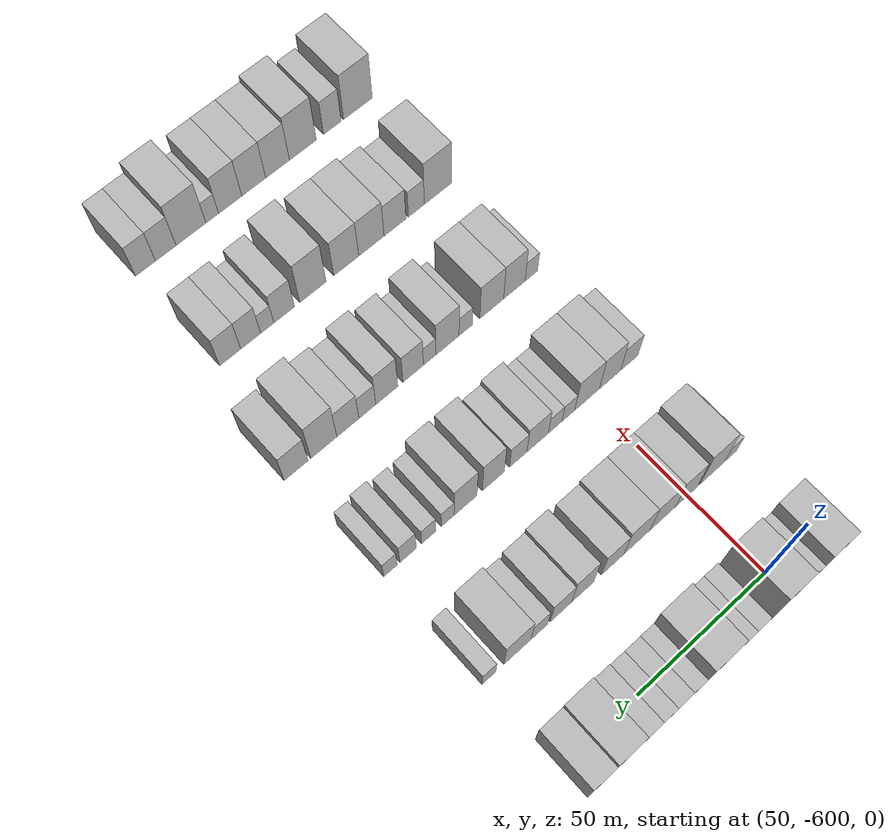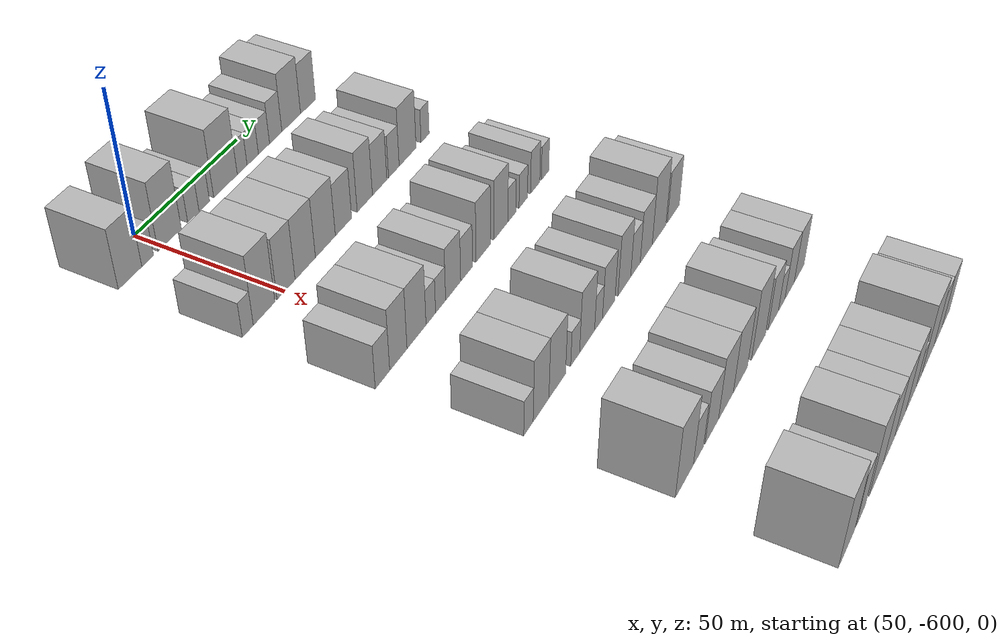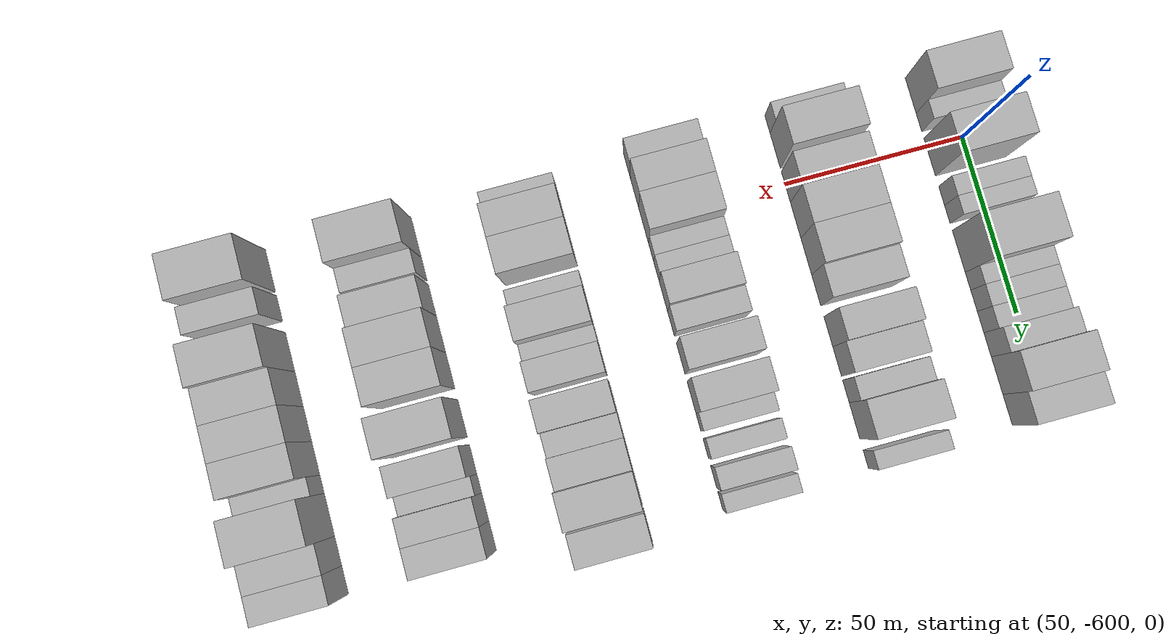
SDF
<sdf version="1.6">
 <world name="default">
  <model name="building_1">
   <static>1</static>
   <pose>50.0000 -614.8495 0 0.000000 0.000000 0.000000</pose>
   <link name="link">
    <pose>0 0 10.50 0 0 0</pose>
    <collision name="collision"><geometry><box><size>20.0000 10.3011 21.0000</size></box></geometry></collision>
    <visual name="visual">
     <cast_shadows>0</cast_shadows>
     <geometry><box><size>20.0000 10.3011 21.0000</size></box></geometry>
     <material>
      <script>
       <uri>model://HANNAS_wall/materials/scripts</uri>
       <uri>model://HANNAS_wall/materials/textures</uri>
       <name>vrc/HANNAS_wall</name>
      </script>
     </material>
    </visual>
   </link>
  </model>
  <model name="building_2">
   <static>1</static>
   <pose>50.0000 -607.0662 0 0.000000 0.000000 0.000000</pose>
   <link name="link">
    <pose>0 0 6.00 0 0 0</pose>
    <collision name="collision"><geometry><box><size>20.0000 5.2654 12.0000</size></box></geometry></collision>
    <visual name="visual">
     <cast_shadows>0</cast_shadows>
     <geometry><box><size>20.0000 5.2654 12.0000</size></box></geometry>
     <material>
      <script>
       <uri>model://HANNAS_wall/materials/scripts</uri>
       <uri>model://HANNAS_wall/materials/textures</uri>
       <name>vrc/HANNAS_wall</name>
      </script>
     </material>
    </visual>
   </link>
  </model>
  <model name="building_3">
   <static>1</static>
   <pose>50.0000 -597.0475 0 0.000000 0.000000 0.000000</pose>
   <link name="link">
    <pose>0 0 12.00 0 0 0</pose>
    <collision name="collision"><geometry><box><size>20.0000 10.7720 24.0000</size></box></geometry></collision>
    <visual name="visual">
     <cast_shadows>0</cast_shadows>
     <geometry><box><size>20.0000 10.7720 24.0000</size></box></geometry>
     <material>
      <script>
       <uri>model://HANNAS_wall/materials/scripts</uri>
       <uri>model://HANNAS_wall/materials/textures</uri>
       <name>vrc/HANNAS_wall</name>
      </script>
     </material>
    </visual>
   </link>
  </model>
  <model name="building_4">
   <static>1</static>
   <pose>50.0000 -585.9418 0 0.000000 0.000000 0.000000</pose>
   <link name="link">
    <pose>0 0 6.00 0 0 0</pose>
    <collision name="collision"><geometry><box><size>20.0000 5.4393 12.0000</size></box></geometry></collision>
    <visual name="visual">
     <cast_shadows>0</cast_shadows>
     <geometry><box><size>20.0000 5.4393 12.0000</size></box></geometry>
     <material>
      <script>
       <uri>model://HANNAS_wall/materials/scripts</uri>
       <uri>model://HANNAS_wall/materials/textures</uri>
       <name>vrc/HANNAS_wall</name>
      </script>
     </material>
    </visual>
   </link>
  </model>
  <model name="building_5">
   <static>1</static>
   <pose>50.0000 -580.6580 0 0.000000 0.000000 0.000000</pose>
   <link name="link">
    <pose>0 0 6.00 0 0 0</pose>
    <collision name="collision"><geometry><box><size>20.0000 5.1283 12.0000</size></box></geometry></collision>
    <visual name="visual">
     <cast_shadows>0</cast_shadows>
     <geometry><box><size>20.0000 5.1283 12.0000</size></box></geometry>
     <material>
      <script>
       <uri>model://HANNAS_wall/materials/scripts</uri>
       <uri>model://HANNAS_wall/materials/textures</uri>
       <name>vrc/HANNAS_wall</name>
      </script>
     </material>
    </visual>
   </link>
  </model>
  <model name="building_6">
   <static>1</static>
   <pose>50.0000 -570.1787 0 0.000000 0.000000 0.000000</pose>
   <link name="link">
    <pose>0 0 12.00 0 0 0</pose>
    <collision name="collision"><geometry><box><size>20.0000 11.8302 24.0000</size></box></geometry></collision>
    <visual name="visual">
     <cast_shadows>0</cast_shadows>
     <geometry><box><size>20.0000 11.8302 24.0000</size></box></geometry>
     <material>
      <script>
       <uri>model://HANNAS_wall/materials/scripts</uri>
       <uri>model://HANNAS_wall/materials/textures</uri>
       <name>vrc/HANNAS_wall</name>
      </script>
     </material>
    </visual>
   </link>
  </model>
  <model name="building_7">
   <static>1</static>
   <pose>50.0000 -561.7412 0 0.000000 0.000000 0.000000</pose>
   <link name="link">
    <pose>0 0 6.00 0 0 0</pose>
    <collision name="collision"><geometry><box><size>20.0000 5.0449 12.0000</size></box></geometry></collision>
    <visual name="visual">
     <cast_shadows>0</cast_shadows>
     <geometry><box><size>20.0000 5.0449 12.0000</size></box></geometry>
     <material>
      <script>
       <uri>model://HANNAS_wall/materials/scripts</uri>
       <uri>model://HANNAS_wall/materials/textures</uri>
       <name>vrc/HANNAS_wall</name>
      </script>
     </material>
    </visual>
   </link>
  </model>
  <model name="building_8">
   <static>1</static>
   <pose>50.0000 -556.2496 0 0.000000 0.000000 0.000000</pose>
   <link name="link">
    <pose>0 0 6.00 0 0 0</pose>
    <collision name="collision"><geometry><box><size>20.0000 5.9382 12.0000</size></box></geometry></collision>
    <visual name="visual">
     <cast_shadows>0</cast_shadows>
     <geometry><box><size>20.0000 5.9382 12.0000</size></box></geometry>
     <material>
      <script>
       <uri>model://HANNAS_wall/materials/scripts</uri>
       <uri>model://HANNAS_wall/materials/textures</uri>
       <name>vrc/HANNAS_wall</name>
      </script>
     </material>
    </visual>
   </link>
  </model>
  <model name="building_9">
   <static>1</static>
   <pose>50.0000 -550.3286 0 0.000000 0.000000 0.000000</pose>
   <link name="link">
    <pose>0 0 6.00 0 0 0</pose>
    <collision name="collision"><geometry><box><size>20.0000 5.9038 12.0000</size></box></geometry></collision>
    <visual name="visual">
     <cast_shadows>0</cast_shadows>
     <geometry><box><size>20.0000 5.9038 12.0000</size></box></geometry>
     <material>
      <script>
       <uri>model://HANNAS_wall/materials/scripts</uri>
       <uri>model://HANNAS_wall/materials/textures</uri>
       <name>vrc/HANNAS_wall</name>
      </script>
     </material>
    </visual>
   </link>
  </model>
  <model name="building_10">
   <static>1</static>
   <pose>50.0000 -544.0306 0 0.000000 0.000000 0.000000</pose>
   <link name="link">
    <pose>0 0 7.50 0 0 0</pose>
    <collision name="collision"><geometry><box><size>20.0000 6.6922 15.0000</size></box></geometry></collision>
    <visual name="visual">
     <cast_shadows>0</cast_shadows>
     <geometry><box><size>20.0000 6.6922 15.0000</size></box></geometry>
     <material>
      <script>
       <uri>model://HANNAS_wall/materials/scripts</uri>
       <uri>model://HANNAS_wall/materials/textures</uri>
       <name>vrc/HANNAS_wall</name>
      </script>
     </material>
    </visual>
   </link>
  </model>
  <model name="building_11">
   <static>1</static>
   <pose>50.0000 -535.5103 0 0.000000 0.000000 0.000000</pose>
   <link name="link">
    <pose>0 0 10.50 0 0 0</pose>
    <collision name="collision"><geometry><box><size>20.0000 10.3485 21.0000</size></box></geometry></collision>
    <visual name="visual">
     <cast_shadows>0</cast_shadows>
     <geometry><box><size>20.0000 10.3485 21.0000</size></box></geometry>
     <material>
      <script>
       <uri>model://HANNAS_wall/materials/scripts</uri>
       <uri>model://HANNAS_wall/materials/textures</uri>
       <name>vrc/HANNAS_wall</name>
      </script>
     </material>
    </visual>
   </link>
  </model>
  <model name="building_12">
   <static>1</static>
   <pose>50.0000 -526.0814 0 0.000000 0.000000 0.000000</pose>
   <link name="link">
    <pose>0 0 9.00 0 0 0</pose>
    <collision name="collision"><geometry><box><size>20.0000 8.5092 18.0000</size></box></geometry></collision>
    <visual name="visual">
     <cast_shadows>0</cast_shadows>
     <geometry><box><size>20.0000 8.5092 18.0000</size></box></geometry>
     <material>
      <script>
       <uri>model://HANNAS_wall/materials/scripts</uri>
       <uri>model://HANNAS_wall/materials/textures</uri>
       <name>vrc/HANNAS_wall</name>
      </script>
     </material>
    </visual>
   </link>
  </model>
  <model name="building_130">
   <static>1</static>
   <pose>90.0000 -617.4781 0 0.000000 0.000000 0.000000</pose>
   <link name="link">
    <pose>0 0 6.00 0 0 0</pose>
    <collision name="collision"><geometry><box><size>20.0000 5.0438 12.0000</size></box></geometry></collision>
    <visual name="visual">
     <cast_shadows>0</cast_shadows>
     <geometry><box><size>20.0000 5.0438 12.0000</size></box></geometry>
     <material>
      <script>
       <uri>model://HANNAS_wall/materials/scripts</uri>
       <uri>model://HANNAS_wall/materials/textures</uri>
       <name>vrc/HANNAS_wall</name>
      </script>
     </material>
    </visual>
   </link>
  </model>
  <model name="building_131">
   <static>1</static>
   <pose>90.0000 -609.8783 0 0.000000 0.000000 0.000000</pose>
   <link name="link">
    <pose>0 0 12.00 0 0 0</pose>
    <collision name="collision"><geometry><box><size>20.0000 10.1557 24.0000</size></box></geometry></collision>
    <visual name="visual">
     <cast_shadows>0</cast_shadows>
     <geometry><box><size>20.0000 10.1557 24.0000</size></box></geometry>
     <material>
      <script>
       <uri>model://HANNAS_wall/materials/scripts</uri>
       <uri>model://HANNAS_wall/materials/textures</uri>
       <name>vrc/HANNAS_wall</name>
      </script>
     </material>
    </visual>
   </link>
  </model>
  <model name="building_132">
   <static>1</static>
   <pose>90.0000 -599.4042 0 0.000000 0.000000 0.000000</pose>
   <link name="link">
    <pose>0 0 10.50 0 0 0</pose>
    <collision name="collision"><geometry><box><size>20.0000 8.7925 21.0000</size></box></geometry></collision>
    <visual name="visual">
     <cast_shadows>0</cast_shadows>
     <geometry><box><size>20.0000 8.7925 21.0000</size></box></geometry>
     <material>
      <script>
       <uri>model://HANNAS_wall/materials/scripts</uri>
       <uri>model://HANNAS_wall/materials/textures</uri>
       <name>vrc/HANNAS_wall</name>
      </script>
     </material>
    </visual>
   </link>
  </model>
  <model name="building_133">
   <static>1</static>
   <pose>90.0000 -589.9030 0 0.000000 0.000000 0.000000</pose>
   <link name="link">
    <pose>0 0 10.50 0 0 0</pose>
    <collision name="collision"><geometry><box><size>20.0000 10.2099 21.0000</size></box></geometry></collision>
    <visual name="visual">
     <cast_shadows>0</cast_shadows>
     <geometry><box><size>20.0000 10.2099 21.0000</size></box></geometry>
     <material>
      <script>
       <uri>model://HANNAS_wall/materials/scripts</uri>
       <uri>model://HANNAS_wall/materials/textures</uri>
       <name>vrc/HANNAS_wall</name>
      </script>
     </material>
    </visual>
   </link>
  </model>
  <model name="building_134">
   <static>1</static>
   <pose>90.0000 -579.6453 0 0.000000 0.000000 0.000000</pose>
   <link name="link">
    <pose>0 0 10.50 0 0 0</pose>
    <collision name="collision"><geometry><box><size>20.0000 10.3055 21.0000</size></box></geometry></collision>
    <visual name="visual">
     <cast_shadows>0</cast_shadows>
     <geometry><box><size>20.0000 10.3055 21.0000</size></box></geometry>
     <material>
      <script>
       <uri>model://HANNAS_wall/materials/scripts</uri>
       <uri>model://HANNAS_wall/materials/textures</uri>
       <name>vrc/HANNAS_wall</name>
      </script>
     </material>
    </visual>
   </link>
  </model>
  <model name="building_135">
   <static>1</static>
   <pose>90.0000 -570.1452 0 0.000000 0.000000 0.000000</pose>
   <link name="link">
    <pose>0 0 9.00 0 0 0</pose>
    <collision name="collision"><geometry><box><size>20.0000 8.6948 18.0000</size></box></geometry></collision>
    <visual name="visual">
     <cast_shadows>0</cast_shadows>
     <geometry><box><size>20.0000 8.6948 18.0000</size></box></geometry>
     <material>
      <script>
       <uri>model://HANNAS_wall/materials/scripts</uri>
       <uri>model://HANNAS_wall/materials/textures</uri>
       <name>vrc/HANNAS_wall</name>
      </script>
     </material>
    </visual>
   </link>
  </model>
  <model name="building_136">
   <static>1</static>
   <pose>90.0000 -558.5830 0 0.000000 0.000000 0.000000</pose>
   <link name="link">
    <pose>0 0 10.50 0 0 0</pose>
    <collision name="collision"><geometry><box><size>20.0000 8.4296 21.0000</size></box></geometry></collision>
    <visual name="visual">
     <cast_shadows>0</cast_shadows>
     <geometry><box><size>20.0000 8.4296 21.0000</size></box></geometry>
     <material>
      <script>
       <uri>model://HANNAS_wall/materials/scripts</uri>
       <uri>model://HANNAS_wall/materials/textures</uri>
       <name>vrc/HANNAS_wall</name>
      </script>
     </material>
    </visual>
   </link>
  </model>
  <model name="building_137">
   <static>1</static>
   <pose>90.0000 -550.2866 0 0.000000 0.000000 0.000000</pose>
   <link name="link">
    <pose>0 0 9.00 0 0 0</pose>
    <collision name="collision"><geometry><box><size>20.0000 8.1632 18.0000</size></box></geometry></collision>
    <visual name="visual">
     <cast_shadows>0</cast_shadows>
     <geometry><box><size>20.0000 8.1632 18.0000</size></box></geometry>
     <material>
      <script>
       <uri>model://HANNAS_wall/materials/scripts</uri>
       <uri>model://HANNAS_wall/materials/textures</uri>
       <name>vrc/HANNAS_wall</name>
      </script>
     </material>
    </visual>
   </link>
  </model>
  <model name="building_138">
   <static>1</static>
   <pose>90.0000 -542.1384 0 0.000000 0.000000 0.000000</pose>
   <link name="link">
    <pose>0 0 7.50 0 0 0</pose>
    <collision name="collision"><geometry><box><size>20.0000 6.1332 15.0000</size></box></geometry></collision>
    <visual name="visual">
     <cast_shadows>0</cast_shadows>
     <geometry><box><size>20.0000 6.1332 15.0000</size></box></geometry>
     <material>
      <script>
       <uri>model://HANNAS_wall/materials/scripts</uri>
       <uri>model://HANNAS_wall/materials/textures</uri>
       <name>vrc/HANNAS_wall</name>
      </script>
     </material>
    </visual>
   </link>
  </model>
  <model name="building_139">
   <static>1</static>
   <pose>90.0000 -534.0435 0 0.000000 0.000000 0.000000</pose>
   <link name="link">
    <pose>0 0 10.50 0 0 0</pose>
    <collision name="collision"><geometry><box><size>20.0000 10.0567 21.0000</size></box></geometry></collision>
    <visual name="visual">
     <cast_shadows>0</cast_shadows>
     <geometry><box><size>20.0000 10.0567 21.0000</size></box></geometry>
     <material>
      <script>
       <uri>model://HANNAS_wall/materials/scripts</uri>
       <uri>model://HANNAS_wall/materials/textures</uri>
       <name>vrc/HANNAS_wall</name>
      </script>
     </material>
    </visual>
   </link>
  </model>
  <model name="building_140">
   <static>1</static>
   <pose>90.0000 -523.5255 0 0.000000 0.000000 0.000000</pose>
   <link name="link">
    <pose>0 0 6.00 0 0 0</pose>
    <collision name="collision"><geometry><box><size>20.0000 4.9794 12.0000</size></box></geometry></collision>
    <visual name="visual">
     <cast_shadows>0</cast_shadows>
     <geometry><box><size>20.0000 4.9794 12.0000</size></box></geometry>
     <material>
      <script>
       <uri>model://HANNAS_wall/materials/scripts</uri>
       <uri>model://HANNAS_wall/materials/textures</uri>
       <name>vrc/HANNAS_wall</name>
      </script>
     </material>
    </visual>
   </link>
  </model>
  <model name="building_267">
   <static>1</static>
   <pose>130.0000 -616.4239 0 0.000000 0.000000 0.000000</pose>
   <link name="link">
    <pose>0 0 7.50 0 0 0</pose>
    <collision name="collision"><geometry><box><size>20.0000 7.1522 15.0000</size></box></geometry></collision>
    <visual name="visual">
     <cast_shadows>0</cast_shadows>
     <geometry><box><size>20.0000 7.1522 15.0000</size></box></geometry>
     <material>
      <script>
       <uri>model://HANNAS_wall/materials/scripts</uri>
       <uri>model://HANNAS_wall/materials/textures</uri>
       <name>vrc/HANNAS_wall</name>
      </script>
     </material>
    </visual>
   </link>
  </model>
  <model name="building_268">
   <static>1</static>
   <pose>130.0000 -608.4622 0 0.000000 0.000000 0.000000</pose>
   <link name="link">
    <pose>0 0 10.50 0 0 0</pose>
    <collision name="collision"><geometry><box><size>20.0000 8.7712 21.0000</size></box></geometry></collision>
    <visual name="visual">
     <cast_shadows>0</cast_shadows>
     <geometry><box><size>20.0000 8.7712 21.0000</size></box></geometry>
     <material>
      <script>
       <uri>model://HANNAS_wall/materials/scripts</uri>
       <uri>model://HANNAS_wall/materials/textures</uri>
       <name>vrc/HANNAS_wall</name>
      </script>
     </material>
    </visual>
   </link>
  </model>
  <model name="building_269">
   <static>1</static>
   <pose>130.0000 -599.0912 0 0.000000 0.000000 0.000000</pose>
   <link name="link">
    <pose>0 0 10.50 0 0 0</pose>
    <collision name="collision"><geometry><box><size>20.0000 9.9708 21.0000</size></box></geometry></collision>
    <visual name="visual">
     <cast_shadows>0</cast_shadows>
     <geometry><box><size>20.0000 9.9708 21.0000</size></box></geometry>
     <material>
      <script>
       <uri>model://HANNAS_wall/materials/scripts</uri>
       <uri>model://HANNAS_wall/materials/textures</uri>
       <name>vrc/HANNAS_wall</name>
      </script>
     </material>
    </visual>
   </link>
  </model>
  <model name="building_270">
   <static>1</static>
   <pose>130.0000 -591.5429 0 0.000000 0.000000 0.000000</pose>
   <link name="link">
    <pose>0 0 6.00 0 0 0</pose>
    <collision name="collision"><geometry><box><size>20.0000 5.1259 12.0000</size></box></geometry></collision>
    <visual name="visual">
     <cast_shadows>0</cast_shadows>
     <geometry><box><size>20.0000 5.1259 12.0000</size></box></geometry>
     <material>
      <script>
       <uri>model://HANNAS_wall/materials/scripts</uri>
       <uri>model://HANNAS_wall/materials/textures</uri>
       <name>vrc/HANNAS_wall</name>
      </script>
     </material>
    </visual>
   </link>
  </model>
  <model name="building_271">
   <static>1</static>
   <pose>130.0000 -586.2428 0 0.000000 0.000000 0.000000</pose>
   <link name="link">
    <pose>0 0 6.00 0 0 0</pose>
    <collision name="collision"><geometry><box><size>20.0000 5.4743 12.0000</size></box></geometry></collision>
    <visual name="visual">
     <cast_shadows>0</cast_shadows>
     <geometry><box><size>20.0000 5.4743 12.0000</size></box></geometry>
     <material>
      <script>
       <uri>model://HANNAS_wall/materials/scripts</uri>
       <uri>model://HANNAS_wall/materials/textures</uri>
       <name>vrc/HANNAS_wall</name>
      </script>
     </material>
    </visual>
   </link>
  </model>
  <model name="building_272">
   <static>1</static>
   <pose>130.0000 -579.2821 0 0.000000 0.000000 0.000000</pose>
   <link name="link">
    <pose>0 0 9.00 0 0 0</pose>
    <collision name="collision"><geometry><box><size>20.0000 8.4471 18.0000</size></box></geometry></collision>
    <visual name="visual">
     <cast_shadows>0</cast_shadows>
     <geometry><box><size>20.0000 8.4471 18.0000</size></box></geometry>
     <material>
      <script>
       <uri>model://HANNAS_wall/materials/scripts</uri>
       <uri>model://HANNAS_wall/materials/textures</uri>
       <name>vrc/HANNAS_wall</name>
      </script>
     </material>
    </visual>
   </link>
  </model>
  <model name="building_273">
   <static>1</static>
   <pose>130.0000 -571.6516 0 0.000000 0.000000 0.000000</pose>
   <link name="link">
    <pose>0 0 7.50 0 0 0</pose>
    <collision name="collision"><geometry><box><size>20.0000 6.8140 15.0000</size></box></geometry></collision>
    <visual name="visual">
     <cast_shadows>0</cast_shadows>
     <geometry><box><size>20.0000 6.8140 15.0000</size></box></geometry>
     <material>
      <script>
       <uri>model://HANNAS_wall/materials/scripts</uri>
       <uri>model://HANNAS_wall/materials/textures</uri>
       <name>vrc/HANNAS_wall</name>
      </script>
     </material>
    </visual>
   </link>
  </model>
  <model name="building_274">
   <static>1</static>
   <pose>130.0000 -561.9880 0 0.000000 0.000000 0.000000</pose>
   <link name="link">
    <pose>0 0 10.50 0 0 0</pose>
    <collision name="collision"><geometry><box><size>20.0000 8.5130 21.0000</size></box></geometry></collision>
    <visual name="visual">
     <cast_shadows>0</cast_shadows>
     <geometry><box><size>20.0000 8.5130 21.0000</size></box></geometry>
     <material>
      <script>
       <uri>model://HANNAS_wall/materials/scripts</uri>
       <uri>model://HANNAS_wall/materials/textures</uri>
       <name>vrc/HANNAS_wall</name>
      </script>
     </material>
    </visual>
   </link>
  </model>
  <model name="building_275">
   <static>1</static>
   <pose>130.0000 -551.3537 0 0.000000 0.000000 0.000000</pose>
   <link name="link">
    <pose>0 0 10.50 0 0 0</pose>
    <collision name="collision"><geometry><box><size>20.0000 8.7556 21.0000</size></box></geometry></collision>
    <visual name="visual">
     <cast_shadows>0</cast_shadows>
     <geometry><box><size>20.0000 8.7556 21.0000</size></box></geometry>
     <material>
      <script>
       <uri>model://HANNAS_wall/materials/scripts</uri>
       <uri>model://HANNAS_wall/materials/textures</uri>
       <name>vrc/HANNAS_wall</name>
      </script>
     </material>
    </visual>
   </link>
  </model>
  <model name="building_276">
   <static>1</static>
   <pose>130.0000 -544.5567 0 0.000000 0.000000 0.000000</pose>
   <link name="link">
    <pose>0 0 6.00 0 0 0</pose>
    <collision name="collision"><geometry><box><size>20.0000 4.8384 12.0000</size></box></geometry></collision>
    <visual name="visual">
     <cast_shadows>0</cast_shadows>
     <geometry><box><size>20.0000 4.8384 12.0000</size></box></geometry>
     <material>
      <script>
       <uri>model://HANNAS_wall/materials/scripts</uri>
       <uri>model://HANNAS_wall/materials/textures</uri>
       <name>vrc/HANNAS_wall</name>
      </script>
     </material>
    </visual>
   </link>
  </model>
  <model name="building_277">
   <static>1</static>
   <pose>130.0000 -537.4446 0 0.000000 0.000000 0.000000</pose>
   <link name="link">
    <pose>0 0 6.00 0 0 0</pose>
    <collision name="collision"><geometry><box><size>20.0000 5.3857 12.0000</size></box></geometry></collision>
    <visual name="visual">
     <cast_shadows>0</cast_shadows>
     <geometry><box><size>20.0000 5.3857 12.0000</size></box></geometry>
     <material>
      <script>
       <uri>model://HANNAS_wall/materials/scripts</uri>
       <uri>model://HANNAS_wall/materials/textures</uri>
       <name>vrc/HANNAS_wall</name>
      </script>
     </material>
    </visual>
   </link>
  </model>
  <model name="building_278">
   <static>1</static>
   <pose>130.0000 -529.7336 0 0.000000 0.000000 0.000000</pose>
   <link name="link">
    <pose>0 0 7.50 0 0 0</pose>
    <collision name="collision"><geometry><box><size>20.0000 6.0363 15.0000</size></box></geometry></collision>
    <visual name="visual">
     <cast_shadows>0</cast_shadows>
     <geometry><box><size>20.0000 6.0363 15.0000</size></box></geometry>
     <material>
      <script>
       <uri>model://HANNAS_wall/materials/scripts</uri>
       <uri>model://HANNAS_wall/materials/textures</uri>
       <name>vrc/HANNAS_wall</name>
      </script>
     </material>
    </visual>
   </link>
  </model>
  <model name="building_279">
   <static>1</static>
   <pose>130.0000 -523.2418 0 0.000000 0.000000 0.000000</pose>
   <link name="link">
    <pose>0 0 6.00 0 0 0</pose>
    <collision name="collision"><geometry><box><size>20.0000 4.9473 12.0000</size></box></geometry></collision>
    <visual name="visual">
     <cast_shadows>0</cast_shadows>
     <geometry><box><size>20.0000 4.9473 12.0000</size></box></geometry>
     <material>
      <script>
       <uri>model://HANNAS_wall/materials/scripts</uri>
       <uri>model://HANNAS_wall/materials/textures</uri>
       <name>vrc/HANNAS_wall</name>
      </script>
     </material>
    </visual>
   </link>
  </model>
  <model name="building_407">
   <static>1</static>
   <pose>170.0000 -614.4282 0 0.000000 0.000000 0.000000</pose>
   <link name="link">
    <pose>0 0 6.00 0 0 0</pose>
    <collision name="collision"><geometry><box><size>20.0000 5.1436 12.0000</size></box></geometry></collision>
    <visual name="visual">
     <cast_shadows>0</cast_shadows>
     <geometry><box><size>20.0000 5.1436 12.0000</size></box></geometry>
     <material>
      <script>
       <uri>model://HANNAS_wall/materials/scripts</uri>
       <uri>model://HANNAS_wall/materials/textures</uri>
       <name>vrc/HANNAS_wall</name>
      </script>
     </material>
    </visual>
   </link>
  </model>
  <model name="building_408">
   <static>1</static>
   <pose>170.0000 -607.4522 0 0.000000 0.000000 0.000000</pose>
   <link name="link">
    <pose>0 0 10.50 0 0 0</pose>
    <collision name="collision"><geometry><box><size>20.0000 8.8084 21.0000</size></box></geometry></collision>
    <visual name="visual">
     <cast_shadows>0</cast_shadows>
     <geometry><box><size>20.0000 8.8084 21.0000</size></box></geometry>
     <material>
      <script>
       <uri>model://HANNAS_wall/materials/scripts</uri>
       <uri>model://HANNAS_wall/materials/textures</uri>
       <name>vrc/HANNAS_wall</name>
      </script>
     </material>
    </visual>
   </link>
  </model>
  <model name="building_409">
   <static>1</static>
   <pose>170.0000 -598.2232 0 0.000000 0.000000 0.000000</pose>
   <link name="link">
    <pose>0 0 10.50 0 0 0</pose>
    <collision name="collision"><geometry><box><size>20.0000 9.6496 21.0000</size></box></geometry></collision>
    <visual name="visual">
     <cast_shadows>0</cast_shadows>
     <geometry><box><size>20.0000 9.6496 21.0000</size></box></geometry>
     <material>
      <script>
       <uri>model://HANNAS_wall/materials/scripts</uri>
       <uri>model://HANNAS_wall/materials/textures</uri>
       <name>vrc/HANNAS_wall</name>
      </script>
     </material>
    </visual>
   </link>
  </model>
  <model name="building_410">
   <static>1</static>
   <pose>170.0000 -587.7251 0 0.000000 0.000000 0.000000</pose>
   <link name="link">
    <pose>0 0 6.00 0 0 0</pose>
    <collision name="collision"><geometry><box><size>20.0000 5.3466 12.0000</size></box></geometry></collision>
    <visual name="visual">
     <cast_shadows>0</cast_shadows>
     <geometry><box><size>20.0000 5.3466 12.0000</size></box></geometry>
     <material>
      <script>
       <uri>model://HANNAS_wall/materials/scripts</uri>
       <uri>model://HANNAS_wall/materials/textures</uri>
       <name>vrc/HANNAS_wall</name>
      </script>
     </material>
    </visual>
   </link>
  </model>
  <model name="building_411">
   <static>1</static>
   <pose>170.0000 -580.4589 0 0.000000 0.000000 0.000000</pose>
   <link name="link">
    <pose>0 0 10.50 0 0 0</pose>
    <collision name="collision"><geometry><box><size>20.0000 9.1857 21.0000</size></box></geometry></collision>
    <visual name="visual">
     <cast_shadows>0</cast_shadows>
     <geometry><box><size>20.0000 9.1857 21.0000</size></box></geometry>
     <material>
      <script>
       <uri>model://HANNAS_wall/materials/scripts</uri>
       <uri>model://HANNAS_wall/materials/textures</uri>
       <name>vrc/HANNAS_wall</name>
      </script>
     </material>
    </visual>
   </link>
  </model>
  <model name="building_412">
   <static>1</static>
   <pose>170.0000 -573.3873 0 0.000000 0.000000 0.000000</pose>
   <link name="link">
    <pose>0 0 6.00 0 0 0</pose>
    <collision name="collision"><geometry><box><size>20.0000 4.9574 12.0000</size></box></geometry></collision>
    <visual name="visual">
     <cast_shadows>0</cast_shadows>
     <geometry><box><size>20.0000 4.9574 12.0000</size></box></geometry>
     <material>
      <script>
       <uri>model://HANNAS_wall/materials/scripts</uri>
       <uri>model://HANNAS_wall/materials/textures</uri>
       <name>vrc/HANNAS_wall</name>
      </script>
     </material>
    </visual>
   </link>
  </model>
  <model name="building_413">
   <static>1</static>
   <pose>170.0000 -566.9038 0 0.000000 0.000000 0.000000</pose>
   <link name="link">
    <pose>0 0 9.00 0 0 0</pose>
    <collision name="collision"><geometry><box><size>20.0000 8.0097 18.0000</size></box></geometry></collision>
    <visual name="visual">
     <cast_shadows>0</cast_shadows>
     <geometry><box><size>20.0000 8.0097 18.0000</size></box></geometry>
     <material>
      <script>
       <uri>model://HANNAS_wall/materials/scripts</uri>
       <uri>model://HANNAS_wall/materials/textures</uri>
       <name>vrc/HANNAS_wall</name>
      </script>
     </material>
    </visual>
   </link>
  </model>
  <model name="building_414">
   <static>1</static>
   <pose>170.0000 -556.6808 0 0.000000 0.000000 0.000000</pose>
   <link name="link">
    <pose>0 0 10.50 0 0 0</pose>
    <collision name="collision"><geometry><box><size>20.0000 8.4362 21.0000</size></box></geometry></collision>
    <visual name="visual">
     <cast_shadows>0</cast_shadows>
     <geometry><box><size>20.0000 8.4362 21.0000</size></box></geometry>
     <material>
      <script>
       <uri>model://HANNAS_wall/materials/scripts</uri>
       <uri>model://HANNAS_wall/materials/textures</uri>
       <name>vrc/HANNAS_wall</name>
      </script>
     </material>
    </visual>
   </link>
  </model>
  <model name="building_415">
   <static>1</static>
   <pose>170.0000 -549.2227 0 0.000000 0.000000 0.000000</pose>
   <link name="link">
    <pose>0 0 7.50 0 0 0</pose>
    <collision name="collision"><geometry><box><size>20.0000 6.4800 15.0000</size></box></geometry></collision>
    <visual name="visual">
     <cast_shadows>0</cast_shadows>
     <geometry><box><size>20.0000 6.4800 15.0000</size></box></geometry>
     <material>
      <script>
       <uri>model://HANNAS_wall/materials/scripts</uri>
       <uri>model://HANNAS_wall/materials/textures</uri>
       <name>vrc/HANNAS_wall</name>
      </script>
     </material>
    </visual>
   </link>
  </model>
  <model name="building_416">
   <static>1</static>
   <pose>170.0000 -541.7992 0 0.000000 0.000000 0.000000</pose>
   <link name="link">
    <pose>0 0 9.00 0 0 0</pose>
    <collision name="collision"><geometry><box><size>20.0000 8.3669 18.0000</size></box></geometry></collision>
    <visual name="visual">
     <cast_shadows>0</cast_shadows>
     <geometry><box><size>20.0000 8.3669 18.0000</size></box></geometry>
     <material>
      <script>
       <uri>model://HANNAS_wall/materials/scripts</uri>
       <uri>model://HANNAS_wall/materials/textures</uri>
       <name>vrc/HANNAS_wall</name>
      </script>
     </material>
    </visual>
   </link>
  </model>
  <model name="building_417">
   <static>1</static>
   <pose>170.0000 -532.7067 0 0.000000 0.000000 0.000000</pose>
   <link name="link">
    <pose>0 0 12.00 0 0 0</pose>
    <collision name="collision"><geometry><box><size>20.0000 9.8180 24.0000</size></box></geometry></collision>
    <visual name="visual">
     <cast_shadows>0</cast_shadows>
     <geometry><box><size>20.0000 9.8180 24.0000</size></box></geometry>
     <material>
      <script>
       <uri>model://HANNAS_wall/materials/scripts</uri>
       <uri>model://HANNAS_wall/materials/textures</uri>
       <name>vrc/HANNAS_wall</name>
      </script>
     </material>
    </visual>
   </link>
  </model>
  <model name="building_418">
   <static>1</static>
   <pose>170.0000 -522.3784 0 0.000000 0.000000 0.000000</pose>
   <link name="link">
    <pose>0 0 9.00 0 0 0</pose>
    <collision name="collision"><geometry><box><size>20.0000 8.8387 18.0000</size></box></geometry></collision>
    <visual name="visual">
     <cast_shadows>0</cast_shadows>
     <geometry><box><size>20.0000 8.8387 18.0000</size></box></geometry>
     <material>
      <script>
       <uri>model://HANNAS_wall/materials/scripts</uri>
       <uri>model://HANNAS_wall/materials/textures</uri>
       <name>vrc/HANNAS_wall</name>
      </script>
     </material>
    </visual>
   </link>
  </model>
  <model name="building_541">
   <static>1</static>
   <pose>210.0000 -612.3883 0 0.000000 0.000000 0.000000</pose>
   <link name="link">
    <pose>0 0 12.00 0 0 0</pose>
    <collision name="collision"><geometry><box><size>20.0000 11.2234 24.0000</size></box></geometry></collision>
    <visual name="visual">
     <cast_shadows>0</cast_shadows>
     <geometry><box><size>20.0000 11.2234 24.0000</size></box></geometry>
     <material>
      <script>
       <uri>model://HANNAS_wall/materials/scripts</uri>
       <uri>model://HANNAS_wall/materials/textures</uri>
       <name>vrc/HANNAS_wall</name>
      </script>
     </material>
    </visual>
   </link>
  </model>
  <model name="building_542">
   <static>1</static>
   <pose>210.0000 -603.5026 0 0.000000 0.000000 0.000000</pose>
   <link name="link">
    <pose>0 0 7.50 0 0 0</pose>
    <collision name="collision"><geometry><box><size>20.0000 6.5479 15.0000</size></box></geometry></collision>
    <visual name="visual">
     <cast_shadows>0</cast_shadows>
     <geometry><box><size>20.0000 6.5479 15.0000</size></box></geometry>
     <material>
      <script>
       <uri>model://HANNAS_wall/materials/scripts</uri>
       <uri>model://HANNAS_wall/materials/textures</uri>
       <name>vrc/HANNAS_wall</name>
      </script>
     </material>
    </visual>
   </link>
  </model>
  <model name="building_543">
   <static>1</static>
   <pose>210.0000 -594.7750 0 0.000000 0.000000 0.000000</pose>
   <link name="link">
    <pose>0 0 9.00 0 0 0</pose>
    <collision name="collision"><geometry><box><size>20.0000 8.9073 18.0000</size></box></geometry></collision>
    <visual name="visual">
     <cast_shadows>0</cast_shadows>
     <geometry><box><size>20.0000 8.9073 18.0000</size></box></geometry>
     <material>
      <script>
       <uri>model://HANNAS_wall/materials/scripts</uri>
       <uri>model://HANNAS_wall/materials/textures</uri>
       <name>vrc/HANNAS_wall</name>
      </script>
     </material>
    </visual>
   </link>
  </model>
  <model name="building_544">
   <static>1</static>
   <pose>210.0000 -585.2378 0 0.000000 0.000000 0.000000</pose>
   <link name="link">
    <pose>0 0 10.50 0 0 0</pose>
    <collision name="collision"><geometry><box><size>20.0000 10.1671 21.0000</size></box></geometry></collision>
    <visual name="visual">
     <cast_shadows>0</cast_shadows>
     <geometry><box><size>20.0000 10.1671 21.0000</size></box></geometry>
     <material>
      <script>
       <uri>model://HANNAS_wall/materials/scripts</uri>
       <uri>model://HANNAS_wall/materials/textures</uri>
       <name>vrc/HANNAS_wall</name>
      </script>
     </material>
    </visual>
   </link>
  </model>
  <model name="building_545">
   <static>1</static>
   <pose>210.0000 -575.1773 0 0.000000 0.000000 0.000000</pose>
   <link name="link">
    <pose>0 0 10.50 0 0 0</pose>
    <collision name="collision"><geometry><box><size>20.0000 9.9539 21.0000</size></box></geometry></collision>
    <visual name="visual">
     <cast_shadows>0</cast_shadows>
     <geometry><box><size>20.0000 9.9539 21.0000</size></box></geometry>
     <material>
      <script>
       <uri>model://HANNAS_wall/materials/scripts</uri>
       <uri>model://HANNAS_wall/materials/textures</uri>
       <name>vrc/HANNAS_wall</name>
      </script>
     </material>
    </visual>
   </link>
  </model>
  <model name="building_546">
   <static>1</static>
   <pose>210.0000 -562.0287 0 0.000000 0.000000 0.000000</pose>
   <link name="link">
    <pose>0 0 12.00 0 0 0</pose>
    <collision name="collision"><geometry><box><size>20.0000 10.3434 24.0000</size></box></geometry></collision>
    <visual name="visual">
     <cast_shadows>0</cast_shadows>
     <geometry><box><size>20.0000 10.3434 24.0000</size></box></geometry>
     <material>
      <script>
       <uri>model://HANNAS_wall/materials/scripts</uri>
       <uri>model://HANNAS_wall/materials/textures</uri>
       <name>vrc/HANNAS_wall</name>
      </script>
     </material>
    </visual>
   </link>
  </model>
  <model name="building_547">
   <static>1</static>
   <pose>210.0000 -550.8556 0 0.000000 0.000000 0.000000</pose>
   <link name="link">
    <pose>0 0 9.00 0 0 0</pose>
    <collision name="collision"><geometry><box><size>20.0000 8.0028 18.0000</size></box></geometry></collision>
    <visual name="visual">
     <cast_shadows>0</cast_shadows>
     <geometry><box><size>20.0000 8.0028 18.0000</size></box></geometry>
     <material>
      <script>
       <uri>model://HANNAS_wall/materials/scripts</uri>
       <uri>model://HANNAS_wall/materials/textures</uri>
       <name>vrc/HANNAS_wall</name>
      </script>
     </material>
    </visual>
   </link>
  </model>
  <model name="building_548">
   <static>1</static>
   <pose>210.0000 -544.3296 0 0.000000 0.000000 0.000000</pose>
   <link name="link">
    <pose>0 0 6.00 0 0 0</pose>
    <collision name="collision"><geometry><box><size>20.0000 5.0492 12.0000</size></box></geometry></collision>
    <visual name="visual">
     <cast_shadows>0</cast_shadows>
     <geometry><box><size>20.0000 5.0492 12.0000</size></box></geometry>
     <material>
      <script>
       <uri>model://HANNAS_wall/materials/scripts</uri>
       <uri>model://HANNAS_wall/materials/textures</uri>
       <name>vrc/HANNAS_wall</name>
      </script>
     </material>
    </visual>
   </link>
  </model>
  <model name="building_549">
   <static>1</static>
   <pose>210.0000 -538.0385 0 0.000000 0.000000 0.000000</pose>
   <link name="link">
    <pose>0 0 9.00 0 0 0</pose>
    <collision name="collision"><geometry><box><size>20.0000 7.5331 18.0000</size></box></geometry></collision>
    <visual name="visual">
     <cast_shadows>0</cast_shadows>
     <geometry><box><size>20.0000 7.5331 18.0000</size></box></geometry>
     <material>
      <script>
       <uri>model://HANNAS_wall/materials/scripts</uri>
       <uri>model://HANNAS_wall/materials/textures</uri>
       <name>vrc/HANNAS_wall</name>
      </script>
     </material>
    </visual>
   </link>
  </model>
  <model name="building_550">
   <static>1</static>
   <pose>210.0000 -530.2782 0 0.000000 0.000000 0.000000</pose>
   <link name="link">
    <pose>0 0 9.00 0 0 0</pose>
    <collision name="collision"><geometry><box><size>20.0000 7.9874 18.0000</size></box></geometry></collision>
    <visual name="visual">
     <cast_shadows>0</cast_shadows>
     <geometry><box><size>20.0000 7.9874 18.0000</size></box></geometry>
     <material>
      <script>
       <uri>model://HANNAS_wall/materials/scripts</uri>
       <uri>model://HANNAS_wall/materials/textures</uri>
       <name>vrc/HANNAS_wall</name>
      </script>
     </material>
    </visual>
   </link>
  </model>
  <model name="building_677">
   <static>1</static>
   <pose>250.0000 -614.0264 0 0.000000 0.000000 0.000000</pose>
   <link name="link">
    <pose>0 0 12.00 0 0 0</pose>
    <collision name="collision"><geometry><box><size>20.0000 11.9473 24.0000</size></box></geometry></collision>
    <visual name="visual">
     <cast_shadows>0</cast_shadows>
     <geometry><box><size>20.0000 11.9473 24.0000</size></box></geometry>
     <material>
      <script>
       <uri>model://HANNAS_wall/materials/scripts</uri>
       <uri>model://HANNAS_wall/materials/textures</uri>
       <name>vrc/HANNAS_wall</name>
      </script>
     </material>
    </visual>
   </link>
  </model>
  <model name="building_678">
   <static>1</static>
   <pose>250.0000 -603.4154 0 0.000000 0.000000 0.000000</pose>
   <link name="link">
    <pose>0 0 9.00 0 0 0</pose>
    <collision name="collision"><geometry><box><size>20.0000 7.2746 18.0000</size></box></geometry></collision>
    <visual name="visual">
     <cast_shadows>0</cast_shadows>
     <geometry><box><size>20.0000 7.2746 18.0000</size></box></geometry>
     <material>
      <script>
       <uri>model://HANNAS_wall/materials/scripts</uri>
       <uri>model://HANNAS_wall/materials/textures</uri>
       <name>vrc/HANNAS_wall</name>
      </script>
     </material>
    </visual>
   </link>
  </model>
  <model name="building_679">
   <static>1</static>
   <pose>250.0000 -591.3120 0 0.000000 0.000000 0.000000</pose>
   <link name="link">
    <pose>0 0 12.00 0 0 0</pose>
    <collision name="collision"><geometry><box><size>20.0000 10.9321 24.0000</size></box></geometry></collision>
    <visual name="visual">
     <cast_shadows>0</cast_shadows>
     <geometry><box><size>20.0000 10.9321 24.0000</size></box></geometry>
     <material>
      <script>
       <uri>model://HANNAS_wall/materials/scripts</uri>
       <uri>model://HANNAS_wall/materials/textures</uri>
       <name>vrc/HANNAS_wall</name>
      </script>
     </material>
    </visual>
   </link>
  </model>
  <model name="building_680">
   <static>1</static>
   <pose>250.0000 -581.0609 0 0.000000 0.000000 0.000000</pose>
   <link name="link">
    <pose>0 0 10.50 0 0 0</pose>
    <collision name="collision"><geometry><box><size>20.0000 9.5702 21.0000</size></box></geometry></collision>
    <visual name="visual">
     <cast_shadows>0</cast_shadows>
     <geometry><box><size>20.0000 9.5702 21.0000</size></box></geometry>
     <material>
      <script>
       <uri>model://HANNAS_wall/materials/scripts</uri>
       <uri>model://HANNAS_wall/materials/textures</uri>
       <name>vrc/HANNAS_wall</name>
      </script>
     </material>
    </visual>
   </link>
  </model>
  <model name="building_681">
   <static>1</static>
   <pose>250.0000 -571.5007 0 0.000000 0.000000 0.000000</pose>
   <link name="link">
    <pose>0 0 10.50 0 0 0</pose>
    <collision name="collision"><geometry><box><size>20.0000 9.5502 21.0000</size></box></geometry></collision>
    <visual name="visual">
     <cast_shadows>0</cast_shadows>
     <geometry><box><size>20.0000 9.5502 21.0000</size></box></geometry>
     <material>
      <script>
       <uri>model://HANNAS_wall/materials/scripts</uri>
       <uri>model://HANNAS_wall/materials/textures</uri>
       <name>vrc/HANNAS_wall</name>
      </script>
     </material>
    </visual>
   </link>
  </model>
  <model name="building_682">
   <static>1</static>
   <pose>250.0000 -562.1571 0 0.000000 0.000000 0.000000</pose>
   <link name="link">
    <pose>0 0 10.50 0 0 0</pose>
    <collision name="collision"><geometry><box><size>20.0000 9.1370 21.0000</size></box></geometry></collision>
    <visual name="visual">
     <cast_shadows>0</cast_shadows>
     <geometry><box><size>20.0000 9.1370 21.0000</size></box></geometry>
     <material>
      <script>
       <uri>model://HANNAS_wall/materials/scripts</uri>
       <uri>model://HANNAS_wall/materials/textures</uri>
       <name>vrc/HANNAS_wall</name>
      </script>
     </material>
    </visual>
   </link>
  </model>
  <model name="building_683">
   <static>1</static>
   <pose>250.0000 -555.1176 0 0.000000 0.000000 0.000000</pose>
   <link name="link">
    <pose>0 0 6.00 0 0 0</pose>
    <collision name="collision"><geometry><box><size>20.0000 4.9421 12.0000</size></box></geometry></collision>
    <visual name="visual">
     <cast_shadows>0</cast_shadows>
     <geometry><box><size>20.0000 4.9421 12.0000</size></box></geometry>
     <material>
      <script>
       <uri>model://HANNAS_wall/materials/scripts</uri>
       <uri>model://HANNAS_wall/materials/textures</uri>
       <name>vrc/HANNAS_wall</name>
      </script>
     </material>
    </visual>
   </link>
  </model>
  <model name="building_684">
   <static>1</static>
   <pose>250.0000 -546.8632 0 0.000000 0.000000 0.000000</pose>
   <link name="link">
    <pose>0 0 12.00 0 0 0</pose>
    <collision name="collision"><geometry><box><size>20.0000 11.5667 24.0000</size></box></geometry></collision>
    <visual name="visual">
     <cast_shadows>0</cast_shadows>
     <geometry><box><size>20.0000 11.5667 24.0000</size></box></geometry>
     <material>
      <script>
       <uri>model://HANNAS_wall/materials/scripts</uri>
       <uri>model://HANNAS_wall/materials/textures</uri>
       <name>vrc/HANNAS_wall</name>
      </script>
     </material>
    </visual>
   </link>
  </model>
  <model name="building_685">
   <static>1</static>
   <pose>250.0000 -537.1583 0 0.000000 0.000000 0.000000</pose>
   <link name="link">
    <pose>0 0 9.00 0 0 0</pose>
    <collision name="collision"><geometry><box><size>20.0000 7.8430 18.0000</size></box></geometry></collision>
    <visual name="visual">
     <cast_shadows>0</cast_shadows>
     <geometry><box><size>20.0000 7.8430 18.0000</size></box></geometry>
     <material>
      <script>
       <uri>model://HANNAS_wall/materials/scripts</uri>
       <uri>model://HANNAS_wall/materials/textures</uri>
       <name>vrc/HANNAS_wall</name>
      </script>
     </material>
    </visual>
   </link>
  </model>
  <model name="building_686">
   <static>1</static>
   <pose>250.0000 -529.4375 0 0.000000 0.000000 0.000000</pose>
   <link name="link">
    <pose>0 0 9.00 0 0 0</pose>
    <collision name="collision"><geometry><box><size>20.0000 7.5986 18.0000</size></box></geometry></collision>
    <visual name="visual">
     <cast_shadows>0</cast_shadows>
     <geometry><box><size>20.0000 7.5986 18.0000</size></box></geometry>
     <material>
      <script>
       <uri>model://HANNAS_wall/materials/scripts</uri>
       <uri>model://HANNAS_wall/materials/textures</uri>
       <name>vrc/HANNAS_wall</name>
      </script>
     </material>
    </visual>
   </link>
  </model>
 </world>
</sdf>
